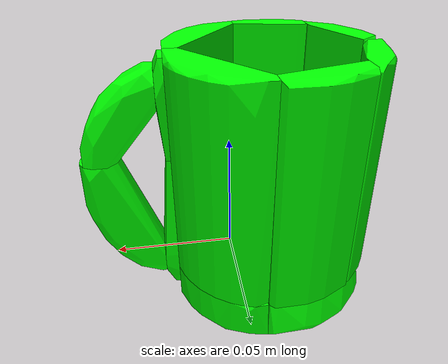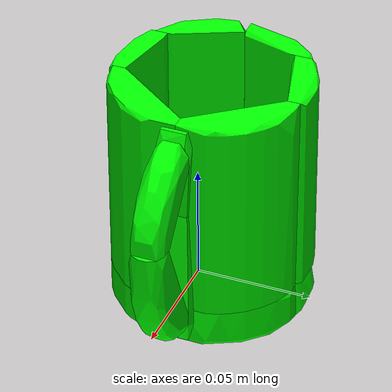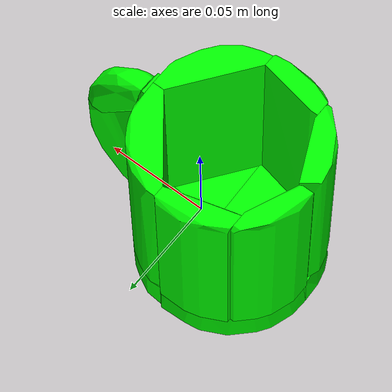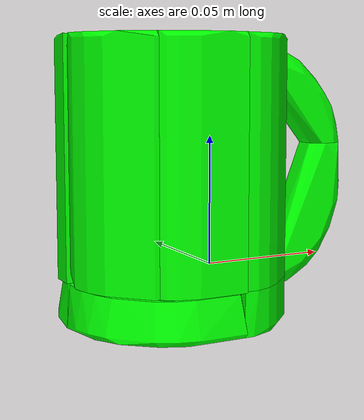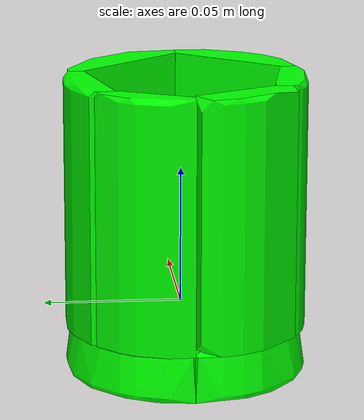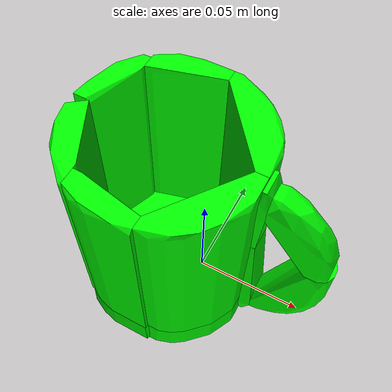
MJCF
<mujoco model="mug">

    <asset>
        <mesh name="mug" file="../meshes/grab/mug/mug.stl" scale="1 1 1" />
        <mesh name="contact0" file="../meshes/grab/mug/contact0.stl" scale="1 1 1" />
        <mesh name="contact1" file="../meshes/grab/mug/contact1.stl" scale="1 1 1" />
        <mesh name="contact2" file="../meshes/grab/mug/contact2.stl" scale="1 1 1" />
        <mesh name="contact3" file="../meshes/grab/mug/contact3.stl" scale="1 1 1" />
        <mesh name="contact4" file="../meshes/grab/mug/contact4.stl" scale="1 1 1" />
        <mesh name="contact5" file="../meshes/grab/mug/contact5.stl" scale="1 1 1" />
        <mesh name="contact6" file="../meshes/grab/mug/contact6.stl" scale="1 1 1" />
        <mesh name="contact7" file="../meshes/grab/mug/contact7.stl" scale="1 1 1" />
        <mesh name="contact8" file="../meshes/grab/mug/contact8.stl" scale="1 1 1" />
        <mesh name="contact9" file="../meshes/grab/mug/contact9.stl" scale="1 1 1" />
        <mesh name="contact10" file="../meshes/grab/mug/contact10.stl" scale="1 1 1" />
        <mesh name="contact11" file="../meshes/grab/mug/contact11.stl" scale="1 1 1" />
        <mesh name="contact12" file="../meshes/grab/mug/contact12.stl" scale="1 1 1" />
        <mesh name="contact13" file="../meshes/grab/mug/contact13.stl" scale="1 1 1" />
    </asset>

    <worldbody>
        <body name="object" pos="0.00 0.0 0.035" >
            <!--geom name="mug_visual" type="mesh" contype="0" conaffinity="0" mass="0" group="1" material="MatObject" mesh="mug" rgba="1 0 0 1.0" /-->
            <geom name="mug_contact0" density="1250" type="mesh" mesh="contact0" condim="4" rgba="0 1 0 1" />
            <geom name="mug_contact1" density="1250" type="mesh" mesh="contact1" condim="4" rgba="0 1 0 1" />
            <geom name="mug_contact2" density="1250" type="mesh" mesh="contact2" condim="4" rgba="0 1 0 1" />
            <geom name="mug_contact3" density="1250" type="mesh" mesh="contact3" condim="4" rgba="0 1 0 1" />
            <geom name="mug_contact4" density="1250" type="mesh" mesh="contact4" condim="4" rgba="0 1 0 1" />
            <geom name="mug_contact5" density="1250" type="mesh" mesh="contact5" condim="4" rgba="0 1 0 1" />
            <geom name="mug_contact6" density="1250" type="mesh" mesh="contact6" condim="4" rgba="0 1 0 1" />
            <geom name="mug_contact7" density="1250" type="mesh" mesh="contact7" condim="4" rgba="0 1 0 1" />
            <geom name="mug_contact8" density="1250" type="mesh" mesh="contact8" condim="4" rgba="0 1 0 1" />
            <geom name="mug_contact9" density="1250" type="mesh" mesh="contact9" condim="4" rgba="0 1 0 1" />
            <geom name="mug_contact10" density="1250" type="mesh" mesh="contact10" condim="4" rgba="0 1 0 1" />
            <geom name="mug_contact11" density="1250" type="mesh" mesh="contact11" condim="4" rgba="0 1 0 1" />
            <geom name="mug_contact12" density="1250" type="mesh" mesh="contact12" condim="4" rgba="0 1 0 1" />
            <geom name="mug_contact13" density="1250" type="mesh" mesh="contact13" condim="4" rgba="0 1 0 1" />
        </body>
    </worldbody>
</mujoco>
